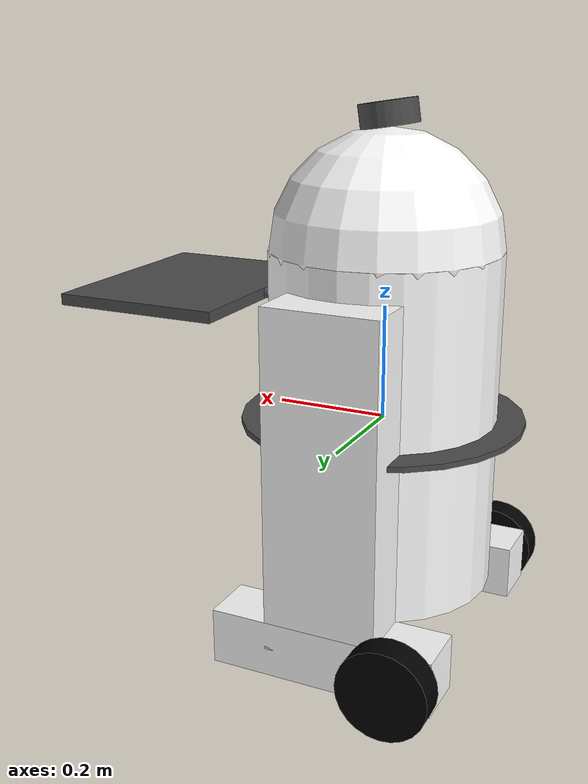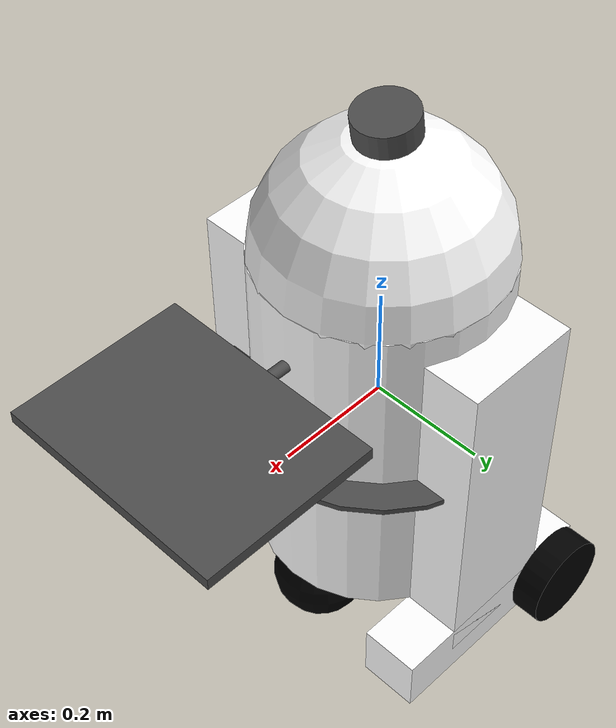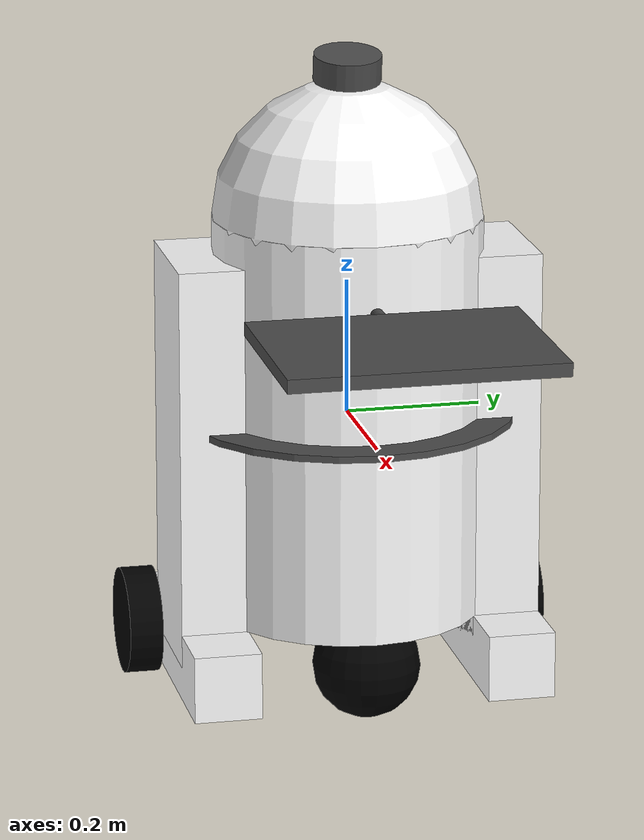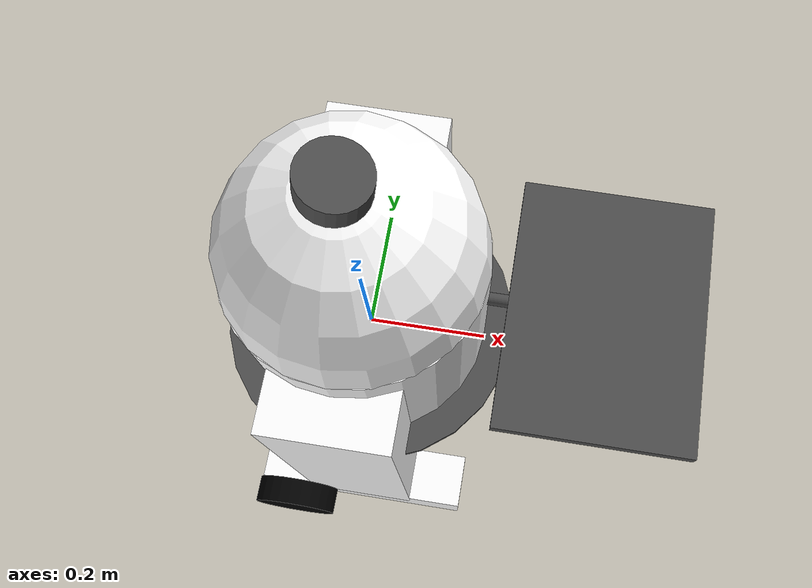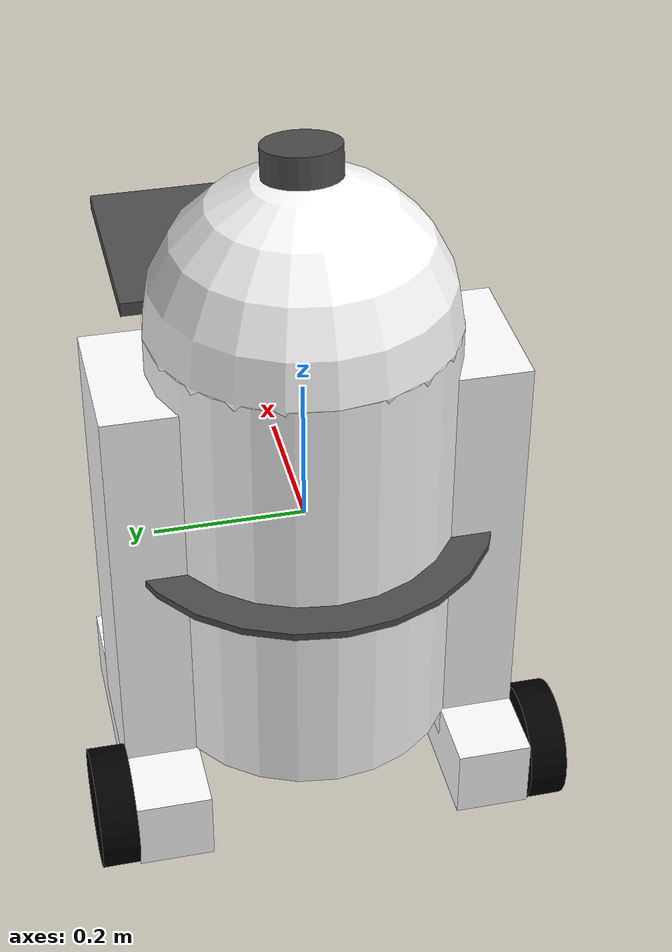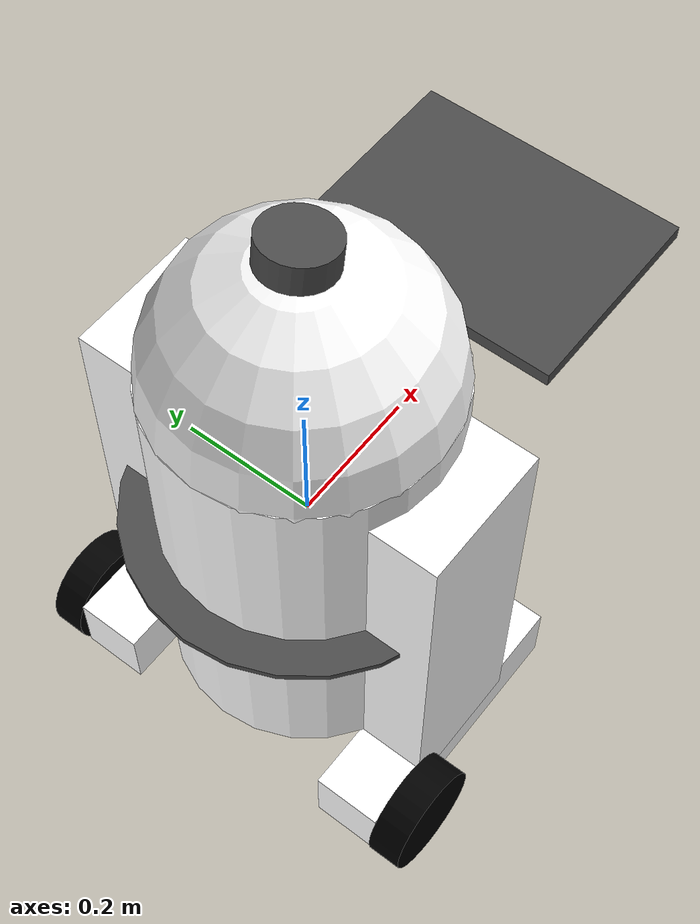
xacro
<?xml version="1.0"?>
<robot xmlns:xacro="http://www.ros.org/wiki/xacro"  name="waiter_robot">

    <xacro:include filename="waiter_robot_core.xacro" />

    <xacro:include filename="ros2_control.xacro" />
    <xacro:include filename="lidar.xacro" />
    <xacro:include filename="camera.xacro" />
    <xacro:include filename="bumper.xacro" />
</robot>

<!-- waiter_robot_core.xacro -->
<robot xmlns:xacro="http://www.ros.org/wiki/xacro">

  <xacro:include filename="inertial_macros.xacro"/>

  <material name="blue">
    <color rgba="0 0 0.8 1"/>
  </material>
  <material name="black">
    <color rgba="0 0 0 1"/>
  </material>
  <material name="white">
    <color rgba="1 1 1 1"/>
  </material>
  <material name="gray">
    <color rgba="0.65 0.65 0.65 1"/>
  </material>
  <material name="dark gray">
  <color rgba="0.3 0.3 0.3 1"/>
</material>

  <link name="base_link">
    <visual>
      <geometry>
        <cylinder length="0.6" radius="0.2"/>
      </geometry>
      <material name="white"/>
    </visual>
    <collision>
      <geometry>
        <cylinder length="0.6" radius="0.2"/>
      </geometry>
    </collision>
    <xacro:inertial_cylinder mass="1" length="0.6" radius="0.2">
        <origin xyz="0 0 0" rpy="0 0 0"/>
    </xacro:inertial_cylinder>
  </link>
   <gazebo reference="base_link">
        <material>Gazebo/White</material>
    </gazebo>

  <joint name="base_footprint_joint" type="fixed">
        <parent link="base_link"/>
        <child link="base_footprint"/>
        <origin xyz="0 0 0" rpy="0 0 0"/>
    </joint>

    <link name="base_footprint"></link>

  <link name="right_leg">
    <visual>
      <geometry>
        <box size="0.6 0.1 0.2"/>
      </geometry>
      <origin rpy="0 1.57075 0" xyz="0 0 -0.3"/>
      <material name="white"/>
    </visual>
    <collision>
      <geometry>
        <box size="0.6 0.1 0.2"/>
      </geometry>
      <origin rpy="0 1.57075 0" xyz="0 0 -0.3"/>
    </collision>
    <xacro:inertial_box mass="0.5" x="0.6" y="0.1" z="0.2">
        <origin xyz="0 0 -0.3" rpy="0 1.57075 0"/>
    </xacro:inertial_box>
  </link>
  <gazebo reference="right_leg">
      <material>Gazebo/White</material>
  </gazebo>

  <joint name="base_to_right_leg" type="fixed">
    <parent link="base_link"/>
    <child link="right_leg"/>
    <origin xyz="0 -0.22 0.25"/>
  </joint>

  <link name="right_base">
    <visual>
      <geometry>
        <box size="0.4 0.1 0.1"/>
      </geometry>
      <material name="white"/>
    </visual>
    <collision>
      <geometry>
        <box size="0.4 0.1 0.1"/>
      </geometry>
    </collision>
    <xacro:inertial_box mass="0.5" x="0.4" y="0.1" z="0.1">
        <origin xyz="0 0 0" rpy="0 0 0"/>
    </xacro:inertial_box>
  </link>
  <gazebo reference="right_base">
      <material>Gazebo/White</material>
  </gazebo>

  <joint name="right_base_joint" type="fixed">
    <parent link="right_leg"/>
    <child link="right_base"/>
    <origin xyz="0 0 -0.6"/>
  </joint>

  <link name="right_back_wheel">
    <visual>
      <origin rpy="1.57075 0 0" xyz="0 0 0"/>
      <geometry>
        <cylinder length="0.05" radius="0.08"/>
      </geometry>
      <material name="black"/>
    </visual>

    <collision>
      <origin rpy="1.57075 0 0" xyz="0 0 0"/>
      <geometry>
        <cylinder length="0.05" radius="0.08"/>
      </geometry>
    </collision>

    <xacro:inertial_cylinder mass="0.5" length="0.05" radius="0.08">
        <origin xyz="0 0 0" rpy="1.57075 0 0"/>
    </xacro:inertial_cylinder>
  </link>
  <gazebo reference="right_back_wheel">
      <material>Gazebo/Black</material>
  </gazebo>

  <joint name="right_back_wheel_joint" type="continuous">
    <axis rpy="0 0 0" xyz="0 1 0"/>
    <parent link="right_base"/>
    <child link="right_back_wheel"/>
    <origin rpy="0 0 0" xyz="-0.133333333333 -0.075 0"/>
  </joint>

  <link name="left_leg">
    <visual>
      <geometry>
        <box size="0.6 0.1 0.2"/>
      </geometry>
      <origin rpy="0 1.57075 0" xyz="0 0 -0.3"/>
      <material name="white"/>
    </visual>

    <collision>
      <geometry>
        <box size="0.6 0.1 0.2"/>
      </geometry>
      <origin rpy="0 1.57075 0" xyz="0 0 -0.3"/>
    </collision>

    <xacro:inertial_box mass="0.5" x="0.6" y="0.1" z="0.2">
        <origin xyz="0 0 -0.3" rpy="0 1.57075 0"/>
    </xacro:inertial_box>
  </link>
  <gazebo reference="left_leg">
      <material>Gazebo/White</material>
  </gazebo>

  <joint name="base_to_left_leg" type="fixed">
    <parent link="base_link"/>
    <child link="left_leg"/>
    <origin xyz="0 0.22 0.25"/>
  </joint>

  <link name="left_base">
    <visual>
      <geometry>
        <box size="0.4 0.1 0.1"/>
      </geometry>
      <material name="white"/>
    </visual>

    <collision>
      <geometry>
        <box size="0.4 0.1 0.1"/>
      </geometry>
    </collision>
     <xacro:inertial_box mass="0.5" x="0.4" y="0.1" z="0.1">
        <origin xyz="0 0 0" rpy="0 0 0"/>
    </xacro:inertial_box>
  </link>
  <gazebo reference="left_base">
      <material>Gazebo/White</material>
  </gazebo>

  <joint name="left_base_joint" type="fixed">
    <parent link="left_leg"/>
    <child link="left_base"/>
    <origin xyz="0 0 -0.6"/>
  </joint>

  <link name="left_back_wheel">
    <visual>
      <origin rpy="1.57075 0 0" xyz="0 0 0"/>
      <geometry>
        <cylinder length="0.05" radius="0.08"/>
      </geometry>
      <material name="black"/>
    </visual>

    <collision>
      <origin rpy="1.57075 0 0" xyz="0 0 0"/>
      <geometry>
        <cylinder length="0.05" radius="0.08"/>
      </geometry>
    </collision>

    <xacro:inertial_cylinder mass="0.5" length="0.05" radius="0.08">
        <origin xyz="0 0 0" rpy="1.57075 0 0"/>
    </xacro:inertial_cylinder>
  </link>
  <gazebo reference="left_back_wheel">
      <material>Gazebo/Black</material>
  </gazebo>

  <joint name="left_back_wheel_joint" type="continuous">
    <axis rpy="0 0 0" xyz="0 1 0"/>
    <parent link="left_base"/>
    <child link="left_back_wheel"/>
    <origin rpy="0 0 0" xyz="-0.133333333333 0.075 0"/>
  </joint>

    <joint name="caster_wheel_joint" type="fixed">
        <parent link="base_link"/>
        <child link="caster_wheel"/>
        <origin xyz="0.133333333333 0 -0.35"/>
    </joint>

    <link name="caster_wheel">
        <visual>
            <geometry>
                <sphere radius="0.08"/>
            </geometry>
            <material name="black"/>
        </visual>
        <collision>
            <geometry>
                <sphere radius="0.08"/>
            </geometry>
        </collision>
        <xacro:inertial_sphere mass="0.1" radius="0.08">
            <origin xyz="0 0 0" rpy="0 0 0"/>
        </xacro:inertial_sphere>
    </link>

    <gazebo reference="caster_wheel">
        <material>Gazebo/Black</material>
        <mu1 value="0.001"/>
        <mu2 value="0.001"/>
    </gazebo>

  <link name="head">
    <visual>
      <geometry>
        <sphere radius="0.2"/>
      </geometry>
      <material name="white"/>
    </visual>

    <collision>
      <geometry>
        <sphere radius="0.2"/>
      </geometry>
    </collision>

    <xacro:inertial_sphere mass="0.5" radius="0.2">
        <origin xyz="0 0 0" rpy="0 0 0"/>
    </xacro:inertial_sphere>
  </link>
  <gazebo reference="head">
      <material>Gazebo/White</material>
  </gazebo>

  <joint name="head_swivel" type="fixed">
    <parent link="base_link"/>
    <child link="head"/>
    <axis xyz="0 0 1"/>
    <origin xyz="0 0 0.3"/>
  </joint>

<link name="tray_pole">
  <visual>
    <origin xyz="0.06 0 0" rpy="0 1.5708 0"/>
    <geometry>
      <cylinder length="0.12" radius="0.01"/>
    </geometry>
    <material name="dark gray"/>
  </visual>

  <collision>
    <origin xyz="0.06 0 0" rpy="0 1.5708 0"/>
    <geometry>
      <cylinder length="0.12" radius="0.01"/>
    </geometry>
  </collision>

  <xacro:inertial_cylinder mass="0.1" length="0.12" radius="0.01">
        <origin xyz="0.06 0 0" rpy="0 1.5708 0"/>
    </xacro:inertial_cylinder>
</link>
<gazebo reference="tray_pole">
      <material>Gazebo/DarkGrey</material>
  </gazebo>

<joint name="base_to_pole" type="fixed">
  <parent link="base_link"/>
  <child link="tray_pole"/>
  <origin xyz="0.18 0 0.20" rpy="0 0 0"/>
</joint>

<link name="tray">
  <visual>
    <geometry>
      <box size="0.30 0.40 0.02"/>
    </geometry>
    <material name="dark gray"/>
  </visual>

  <collision>
    <geometry>
      <box size="0.30 0.40 0.02"/>
    </geometry>
  </collision>

  <xacro:inertial_box mass="0.05" x="0.30" y="0.40" z="0.02">
        <origin xyz="0 0 0" rpy="0 0 0"/>
    </xacro:inertial_box>
</link>
<gazebo reference="tray">
    <material>Gazebo/DarkGrey</material>
</gazebo>

<joint name="pole_to_tray" type="fixed">
  <parent link="tray_pole"/>
  <child link="tray"/>
  <origin xyz="0.2 0 0" rpy="0 0 0"/>
</joint>

</robot>

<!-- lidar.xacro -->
<robot xmlns:xacro="http://www.ros.org/wiki/xacro">

    <joint name="laser_joint" type="fixed">
        <parent link="base_link"/>
        <child link="laser_frame"/>
        <origin xyz="0 0 0" rpy="0 0 0"/>
    </joint>

    <link name="laser_frame">
        <visual>
            <geometry>
                <cylinder radius="0.05" length="0.04"/>
            </geometry>
            <material name="dark gray"/>
        </visual>
        <collision>
            <geometry>
                <cylinder radius="0.05" length="0.04"/>
            </geometry>
        </collision>
        <xacro:inertial_cylinder mass="0.1" length="0.04" radius="0.05">
            <origin xyz="0 0 0" rpy="0 0 0"/>
        </xacro:inertial_cylinder>
    </link>

    <gazebo reference="laser_frame">
        <material>Gazebo/DarkGrey</material>

        <sensor name="laser" type="ray">
            <pose> 0 0 0 0 0 0 </pose>
            <visualize>false</visualize>
            <update_rate>10</update_rate>
            <ray>
                <scan>
                    <horizontal>
                        <samples>360</samples>
                        <min_angle>-3.14</min_angle>
                        <max_angle>3.14</max_angle>
                    </horizontal>
                </scan>
                <range>
                    <min>0.3</min>
                    <max>12</max>
                </range>
            </ray>
            <plugin name="laser_controller" filename="libgazebo_ros_ray_sensor.so">
                <ros>
                    <argument>~/out:=scan</argument>
                </ros>
                <output_type>sensor_msgs/LaserScan</output_type>
                <frame_name>laser_frame</frame_name>
            </plugin>
        </sensor>
    </gazebo>
</robot>

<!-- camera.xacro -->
<robot xmlns:xacro="http://www.ros.org/wiki/xacro">

    <joint name="camera_joint" type="fixed">
        <parent link="head"/>
        <child link="camera_link"/>
        <origin xyz="0 0 0.22" rpy="0 0.15 0"/>
    </joint>

    <link name="camera_link">
        <visual>
            <geometry>
                <cylinder radius="0.05" length="0.04"/>
            </geometry>
            <material name="dark gray"/>
        </visual>
        <collision>
            <geometry>
                <cylinder radius="0.05" length="0.04"/>
            </geometry>
        </collision>
        <xacro:inertial_cylinder mass="0.01" length="0.04" radius="0.05">
            <origin xyz="0 0 0" rpy="0 0 0"/>
        </xacro:inertial_cylinder>
    </link>

    <joint name="camera_optical_joint" type="fixed">
        <parent link="camera_link"/>
        <child link="camera_link_optical"/>
        <origin xyz="0 0 0" rpy="${-pi/2} 0 ${-pi/2}"/>
    </joint>

    <link name="camera_link_optical"></link>

    <gazebo reference="camera_link">
        <material>Gazebo/Red</material>

        <sensor name="camera" type="camera">
            <pose> 0 0 0 0 0 0 </pose>
            <visualize>true</visualize>
            <update_rate>10</update_rate>
            <camera>
                <horizontal_fov>1.089</horizontal_fov>
                <image>
                    <format>R8G8B8</format>
                    <width>640</width>
                    <height>480</height>
                </image>
                <clip>
                    <near>0.05</near>
                    <far>8.0</far>
                </clip>
            </camera>
            <plugin name="camera_controller" filename="libgazebo_ros_camera.so">
                <frame_name>camera_link_optical</frame_name>
            </plugin>
        </sensor>
    </gazebo>
</robot>

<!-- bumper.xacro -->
<robot xmlns:xacro="http://www.ros.org/wiki/xacro">

    <link name="bumper_link">

    <collision name="bumper_collision">
        <geometry>
        <!-- radius = thickness, length = height -->
        <cylinder radius="0.25" length="0.01"/>
        </geometry>
    </collision>

    <visual>
        <geometry>
        <cylinder radius="0.25" length="0.01"/>
        </geometry>
        <material name="dark gray"/>
    </visual>

    </link>

    <joint name="bumper_joint" type="fixed">
    <parent link="base_link"/>
    <child link="bumper_link"/>
    </joint>

    <gazebo reference="bumper_link">
        <material>Gazebo/Red</material>
  <sensor name="bumper_contact" type="contact">
    <always_on>true</always_on>
    <update_rate>10</update_rate>
    <contact>
      <collision>bumper_link_collision</collision>
    </contact>

    <plugin name="bumper_plugin" filename="libgazebo_ros_bumper.so">
      <ros>
        <namespace>/bumper</namespace>
      </ros>
      <bumperTopicName>contact</bumperTopicName>
      <frameName>bumper_link</frameName>
    </plugin>
  </sensor>
</gazebo>
</robot>
